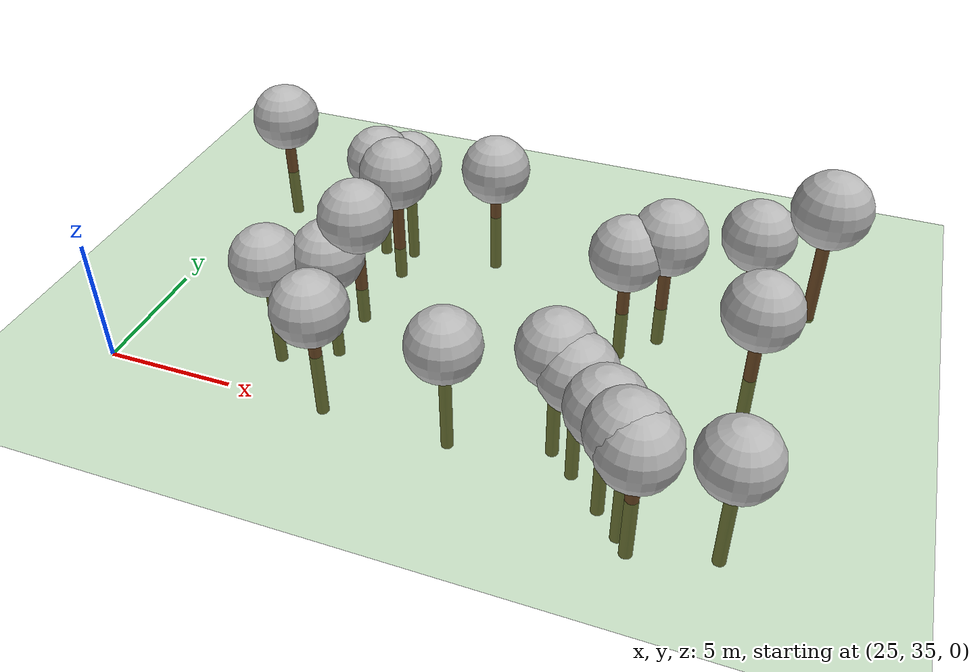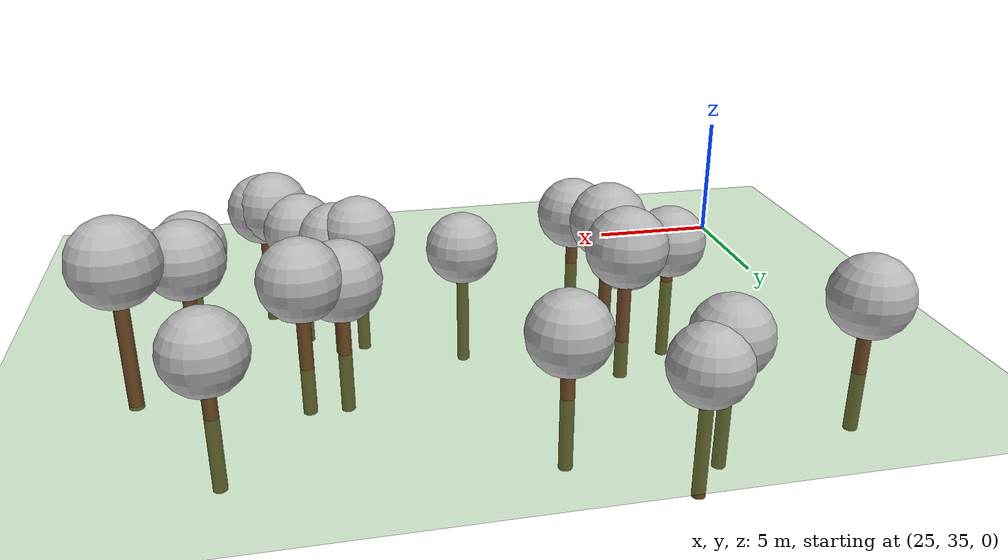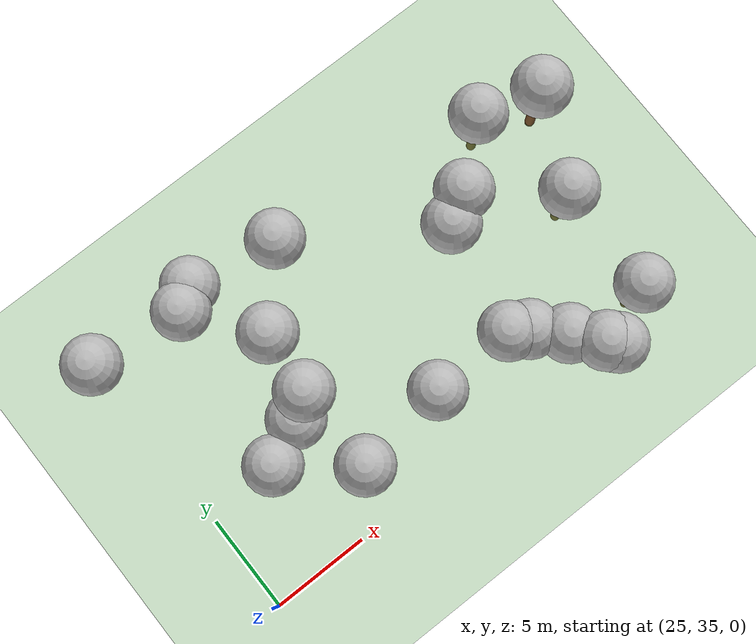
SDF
<sdf version="1.7">
 <world name="default">
  <model name="tree_simple475">
   <static>1</static>
   <link name="link">
    <pose>0 0 0.1 0 -0 0</pose>
    <collision name="collision_trunk">
     <pose>0 0 2 0 -0 0</pose>
     <geometry><cylinder><radius>0.25</radius><length>4</length></cylinder></geometry>
    </collision>
    <collision name="collision_treetop">
     <pose>0 0 5.2 0 -0 0</pose>
     <geometry><sphere><radius>1.5</radius></sphere></geometry>
    </collision>
    <visual name="trunk">
     <pose>0 0 2 0 -0 0</pose>
     <geometry><cylinder><radius>0.25</radius><length>4</length></cylinder></geometry>
     <material>
      <script>
       <uri>model://tree_simple/scripts</uri>
       <uri>model://tree_simple/materials/textures</uri>
       <name>TreeSimple/Trunk</name>
      </script>
     </material>
    </visual>
    <visual name="treetop">
     <pose>0 0 5.2 0 -0 0</pose>
     <geometry><sphere><radius>1.5</radius></sphere></geometry>
     <material>
      <script>
       <uri>model://tree_simple/scripts</uri>
       <uri>model://tree_simple/materials/textures</uri>
       <name>TreeSimple/Treetop</name>
      </script>
     </material>
    </visual>
   </link>
   <pose>30.9431 49.7431 -4.09418 0 -0 0</pose>
  </model>
  <model name="tree_simple449">
   <static>1</static>
   <link name="link">
    <pose>0 0 0.1 0 -0 0</pose>
    <collision name="collision_trunk">
     <pose>0 0 2 0 -0 0</pose>
     <geometry><cylinder><radius>0.25</radius><length>4</length></cylinder></geometry>
    </collision>
    <collision name="collision_treetop">
     <pose>0 0 5.2 0 -0 0</pose>
     <geometry><sphere><radius>1.5</radius></sphere></geometry>
    </collision>
    <visual name="trunk">
     <pose>0 0 2 0 -0 0</pose>
     <geometry><cylinder><radius>0.25</radius><length>4</length></cylinder></geometry>
     <material>
      <script>
       <uri>model://tree_simple/scripts</uri>
       <uri>model://tree_simple/materials/textures</uri>
       <name>TreeSimple/Trunk</name>
      </script>
     </material>
    </visual>
    <visual name="treetop">
     <pose>0 0 5.2 0 -0 0</pose>
     <geometry><sphere><radius>1.5</radius></sphere></geometry>
     <material>
      <script>
       <uri>model://tree_simple/scripts</uri>
       <uri>model://tree_simple/materials/textures</uri>
       <name>TreeSimple/Treetop</name>
      </script>
     </material>
    </visual>
   </link>
   <pose>32.2301 37.5842 -3.06763 0 -0 0</pose>
  </model>
  <model name="tree_simple435">
   <static>1</static>
   <link name="link">
    <pose>0 0 0.1 0 -0 0</pose>
    <collision name="collision_trunk">
     <pose>0 0 2 0 -0 0</pose>
     <geometry><cylinder><radius>0.25</radius><length>4</length></cylinder></geometry>
    </collision>
    <collision name="collision_treetop">
     <pose>0 0 5.2 0 -0 0</pose>
     <geometry><sphere><radius>1.5</radius></sphere></geometry>
    </collision>
    <visual name="trunk">
     <pose>0 0 2 0 -0 0</pose>
     <geometry><cylinder><radius>0.25</radius><length>4</length></cylinder></geometry>
     <material>
      <script>
       <uri>model://tree_simple/scripts</uri>
       <uri>model://tree_simple/materials/textures</uri>
       <name>TreeSimple/Trunk</name>
      </script>
     </material>
    </visual>
    <visual name="treetop">
     <pose>0 0 5.2 0 -0 0</pose>
     <geometry><sphere><radius>1.5</radius></sphere></geometry>
     <material>
      <script>
       <uri>model://tree_simple/scripts</uri>
       <uri>model://tree_simple/materials/textures</uri>
       <name>TreeSimple/Treetop</name>
      </script>
     </material>
    </visual>
   </link>
   <pose>25.0533 49.1626 -2.44093 0 -0 0</pose>
  </model>
  <model name="tree_simple426">
   <static>1</static>
   <link name="link">
    <pose>0 0 0.1 0 -0 0</pose>
    <collision name="collision_trunk">
     <pose>0 0 2 0 -0 0</pose>
     <geometry><cylinder><radius>0.25</radius><length>4</length></cylinder></geometry>
    </collision>
    <collision name="collision_treetop">
     <pose>0 0 5.2 0 -0 0</pose>
     <geometry><sphere><radius>1.5</radius></sphere></geometry>
    </collision>
    <visual name="trunk">
     <pose>0 0 2 0 -0 0</pose>
     <geometry><cylinder><radius>0.25</radius><length>4</length></cylinder></geometry>
     <material>
      <script>
       <uri>model://tree_simple/scripts</uri>
       <uri>model://tree_simple/materials/textures</uri>
       <name>TreeSimple/Trunk</name>
      </script>
     </material>
    </visual>
    <visual name="treetop">
     <pose>0 0 5.2 0 -0 0</pose>
     <geometry><sphere><radius>1.5</radius></sphere></geometry>
     <material>
      <script>
       <uri>model://tree_simple/scripts</uri>
       <uri>model://tree_simple/materials/textures</uri>
       <name>TreeSimple/Treetop</name>
      </script>
     </material>
    </visual>
   </link>
   <pose>48.2961 36.1952 -3.83175 0 -0 0</pose>
  </model>
  <model name="tree_simple414">
   <static>1</static>
   <link name="link">
    <pose>0 0 0.1 0 -0 0</pose>
    <collision name="collision_trunk">
     <pose>0 0 2 0 -0 0</pose>
     <geometry><cylinder><radius>0.25</radius><length>4</length></cylinder></geometry>
    </collision>
    <collision name="collision_treetop">
     <pose>0 0 5.2 0 -0 0</pose>
     <geometry><sphere><radius>1.5</radius></sphere></geometry>
    </collision>
    <visual name="trunk">
     <pose>0 0 2 0 -0 0</pose>
     <geometry><cylinder><radius>0.25</radius><length>4</length></cylinder></geometry>
     <material>
      <script>
       <uri>model://tree_simple/scripts</uri>
       <uri>model://tree_simple/materials/textures</uri>
       <name>TreeSimple/Trunk</name>
      </script>
     </material>
    </visual>
    <visual name="treetop">
     <pose>0 0 5.2 0 -0 0</pose>
     <geometry><sphere><radius>1.5</radius></sphere></geometry>
     <material>
      <script>
       <uri>model://tree_simple/scripts</uri>
       <uri>model://tree_simple/materials/textures</uri>
       <name>TreeSimple/Treetop</name>
      </script>
     </material>
    </visual>
   </link>
   <pose>44.7954 35.1223 -2.74625 0 -0 0</pose>
  </model>
  <model name="tree_simple388">
   <static>1</static>
   <link name="link">
    <pose>0 0 0.1 0 -0 0</pose>
    <collision name="collision_trunk">
     <pose>0 0 2 0 -0 0</pose>
     <geometry><cylinder><radius>0.25</radius><length>4</length></cylinder></geometry>
    </collision>
    <collision name="collision_treetop">
     <pose>0 0 5.2 0 -0 0</pose>
     <geometry><sphere><radius>1.5</radius></sphere></geometry>
    </collision>
    <visual name="trunk">
     <pose>0 0 2 0 -0 0</pose>
     <geometry><cylinder><radius>0.25</radius><length>4</length></cylinder></geometry>
     <material>
      <script>
       <uri>model://tree_simple/scripts</uri>
       <uri>model://tree_simple/materials/textures</uri>
       <name>TreeSimple/Trunk</name>
      </script>
     </material>
    </visual>
    <visual name="treetop">
     <pose>0 0 5.2 0 -0 0</pose>
     <geometry><sphere><radius>1.5</radius></sphere></geometry>
     <material>
      <script>
       <uri>model://tree_simple/scripts</uri>
       <uri>model://tree_simple/materials/textures</uri>
       <name>TreeSimple/Treetop</name>
      </script>
     </material>
    </visual>
   </link>
   <pose>42.4041 37.8396 -3.331 0 -0 0</pose>
  </model>
  <model name="tree_simple384">
   <static>1</static>
   <link name="link">
    <pose>0 0 0.1 0 -0 0</pose>
    <collision name="collision_trunk">
     <pose>0 0 2 0 -0 0</pose>
     <geometry><cylinder><radius>0.25</radius><length>4</length></cylinder></geometry>
    </collision>
    <collision name="collision_treetop">
     <pose>0 0 5.2 0 -0 0</pose>
     <geometry><sphere><radius>1.5</radius></sphere></geometry>
    </collision>
    <visual name="trunk">
     <pose>0 0 2 0 -0 0</pose>
     <geometry><cylinder><radius>0.25</radius><length>4</length></cylinder></geometry>
     <material>
      <script>
       <uri>model://tree_simple/scripts</uri>
       <uri>model://tree_simple/materials/textures</uri>
       <name>TreeSimple/Trunk</name>
      </script>
     </material>
    </visual>
    <visual name="treetop">
     <pose>0 0 5.2 0 -0 0</pose>
     <geometry><sphere><radius>1.5</radius></sphere></geometry>
     <material>
      <script>
       <uri>model://tree_simple/scripts</uri>
       <uri>model://tree_simple/materials/textures</uri>
       <name>TreeSimple/Treetop</name>
      </script>
     </material>
    </visual>
   </link>
   <pose>47.9653 41.8316 -2.13928 0 -0 0</pose>
  </model>
  <model name="tree_simple366">
   <static>1</static>
   <link name="link">
    <pose>0 0 0.1 0 -0 0</pose>
    <collision name="collision_trunk">
     <pose>0 0 2 0 -0 0</pose>
     <geometry><cylinder><radius>0.25</radius><length>4</length></cylinder></geometry>
    </collision>
    <collision name="collision_treetop">
     <pose>0 0 5.2 0 -0 0</pose>
     <geometry><sphere><radius>1.5</radius></sphere></geometry>
    </collision>
    <visual name="trunk">
     <pose>0 0 2 0 -0 0</pose>
     <geometry><cylinder><radius>0.25</radius><length>4</length></cylinder></geometry>
     <material>
      <script>
       <uri>model://tree_simple/scripts</uri>
       <uri>model://tree_simple/materials/textures</uri>
       <name>TreeSimple/Trunk</name>
      </script>
     </material>
    </visual>
    <visual name="treetop">
     <pose>0 0 5.2 0 -0 0</pose>
     <geometry><sphere><radius>1.5</radius></sphere></geometry>
     <material>
      <script>
       <uri>model://tree_simple/scripts</uri>
       <uri>model://tree_simple/materials/textures</uri>
       <name>TreeSimple/Treetop</name>
      </script>
     </material>
    </visual>
   </link>
   <pose>37.2116 38.3075 -3.97843 0 -0 0</pose>
  </model>
  <model name="tree_simple337">
   <static>1</static>
   <link name="link">
    <pose>0 0 0.1 0 -0 0</pose>
    <collision name="collision_trunk">
     <pose>0 0 2 0 -0 0</pose>
     <geometry><cylinder><radius>0.25</radius><length>4</length></cylinder></geometry>
    </collision>
    <collision name="collision_treetop">
     <pose>0 0 5.2 0 -0 0</pose>
     <geometry><sphere><radius>1.5</radius></sphere></geometry>
    </collision>
    <visual name="trunk">
     <pose>0 0 2 0 -0 0</pose>
     <geometry><cylinder><radius>0.25</radius><length>4</length></cylinder></geometry>
     <material>
      <script>
       <uri>model://tree_simple/scripts</uri>
       <uri>model://tree_simple/materials/textures</uri>
       <name>TreeSimple/Trunk</name>
      </script>
     </material>
    </visual>
    <visual name="treetop">
     <pose>0 0 5.2 0 -0 0</pose>
     <geometry><sphere><radius>1.5</radius></sphere></geometry>
     <material>
      <script>
       <uri>model://tree_simple/scripts</uri>
       <uri>model://tree_simple/materials/textures</uri>
       <name>TreeSimple/Treetop</name>
      </script>
     </material>
    </visual>
   </link>
   <pose>43.9549 44.8684 -1.95905 0 -0 0</pose>
  </model>
  <model name="tree_simple306">
   <static>1</static>
   <link name="link">
    <pose>0 0 0.1 0 -0 0</pose>
    <collision name="collision_trunk">
     <pose>0 0 2 0 -0 0</pose>
     <geometry><cylinder><radius>0.25</radius><length>4</length></cylinder></geometry>
    </collision>
    <collision name="collision_treetop">
     <pose>0 0 5.2 0 -0 0</pose>
     <geometry><sphere><radius>1.5</radius></sphere></geometry>
    </collision>
    <visual name="trunk">
     <pose>0 0 2 0 -0 0</pose>
     <geometry><cylinder><radius>0.25</radius><length>4</length></cylinder></geometry>
     <material>
      <script>
       <uri>model://tree_simple/scripts</uri>
       <uri>model://tree_simple/materials/textures</uri>
       <name>TreeSimple/Trunk</name>
      </script>
     </material>
    </visual>
    <visual name="treetop">
     <pose>0 0 5.2 0 -0 0</pose>
     <geometry><sphere><radius>1.5</radius></sphere></geometry>
     <material>
      <script>
       <uri>model://tree_simple/scripts</uri>
       <uri>model://tree_simple/materials/textures</uri>
       <name>TreeSimple/Treetop</name>
      </script>
     </material>
    </visual>
   </link>
   <pose>41.475 38.3641 -2.93764 0 -0 0</pose>
  </model>
  <model name="tree_simple197">
   <static>1</static>
   <link name="link">
    <pose>0 0 0.1 0 -0 0</pose>
    <collision name="collision_trunk">
     <pose>0 0 2 0 -0 0</pose>
     <geometry><cylinder><radius>0.25</radius><length>4</length></cylinder></geometry>
    </collision>
    <collision name="collision_treetop">
     <pose>0 0 5.2 0 -0 0</pose>
     <geometry><sphere><radius>1.5</radius></sphere></geometry>
    </collision>
    <visual name="trunk">
     <pose>0 0 2 0 -0 0</pose>
     <geometry><cylinder><radius>0.25</radius><length>4</length></cylinder></geometry>
     <material>
      <script>
       <uri>model://tree_simple/scripts</uri>
       <uri>model://tree_simple/materials/textures</uri>
       <name>TreeSimple/Trunk</name>
      </script>
     </material>
    </visual>
    <visual name="treetop">
     <pose>0 0 5.2 0 -0 0</pose>
     <geometry><sphere><radius>1.5</radius></sphere></geometry>
     <material>
      <script>
       <uri>model://tree_simple/scripts</uri>
       <uri>model://tree_simple/materials/textures</uri>
       <name>TreeSimple/Treetop</name>
      </script>
     </material>
    </visual>
   </link>
   <pose>45.226 34.713 -2.93057 0 -0 0</pose>
  </model>
  <model name="tree_simple180">
   <static>1</static>
   <link name="link">
    <pose>0 0 0.1 0 -0 0</pose>
    <collision name="collision_trunk">
     <pose>0 0 2 0 -0 0</pose>
     <geometry><cylinder><radius>0.25</radius><length>4</length></cylinder></geometry>
    </collision>
    <collision name="collision_treetop">
     <pose>0 0 5.2 0 -0 0</pose>
     <geometry><sphere><radius>1.5</radius></sphere></geometry>
    </collision>
    <visual name="trunk">
     <pose>0 0 2 0 -0 0</pose>
     <geometry><cylinder><radius>0.25</radius><length>4</length></cylinder></geometry>
     <material>
      <script>
       <uri>model://tree_simple/scripts</uri>
       <uri>model://tree_simple/materials/textures</uri>
       <name>TreeSimple/Trunk</name>
      </script>
     </material>
    </visual>
    <visual name="treetop">
     <pose>0 0 5.2 0 -0 0</pose>
     <geometry><sphere><radius>1.5</radius></sphere></geometry>
     <material>
      <script>
       <uri>model://tree_simple/scripts</uri>
       <uri>model://tree_simple/materials/textures</uri>
       <name>TreeSimple/Treetop</name>
      </script>
     </material>
    </visual>
   </link>
   <pose>31.0354 41.3621 -3.53472 0 -0 0</pose>
  </model>
  <model name="tree_simple164">
   <static>1</static>
   <link name="link">
    <pose>0 0 0.1 0 -0 0</pose>
    <collision name="collision_trunk">
     <pose>0 0 2 0 -0 0</pose>
     <geometry><cylinder><radius>0.25</radius><length>4</length></cylinder></geometry>
    </collision>
    <collision name="collision_treetop">
     <pose>0 0 5.2 0 -0 0</pose>
     <geometry><sphere><radius>1.5</radius></sphere></geometry>
    </collision>
    <visual name="trunk">
     <pose>0 0 2 0 -0 0</pose>
     <geometry><cylinder><radius>0.25</radius><length>4</length></cylinder></geometry>
     <material>
      <script>
       <uri>model://tree_simple/scripts</uri>
       <uri>model://tree_simple/materials/textures</uri>
       <name>TreeSimple/Trunk</name>
      </script>
     </material>
    </visual>
    <visual name="treetop">
     <pose>0 0 5.2 0 -0 0</pose>
     <geometry><sphere><radius>1.5</radius></sphere></geometry>
     <material>
      <script>
       <uri>model://tree_simple/scripts</uri>
       <uri>model://tree_simple/materials/textures</uri>
       <name>TreeSimple/Treetop</name>
      </script>
     </material>
    </visual>
   </link>
   <pose>32.4162 45.1361 -1.64448 0 -0 0</pose>
  </model>
  <model name="tree_simple159">
   <static>1</static>
   <link name="link">
    <pose>0 0 0.1 0 -0 0</pose>
    <collision name="collision_trunk">
     <pose>0 0 2 0 -0 0</pose>
     <geometry><cylinder><radius>0.25</radius><length>4</length></cylinder></geometry>
    </collision>
    <collision name="collision_treetop">
     <pose>0 0 5.2 0 -0 0</pose>
     <geometry><sphere><radius>1.5</radius></sphere></geometry>
    </collision>
    <visual name="trunk">
     <pose>0 0 2 0 -0 0</pose>
     <geometry><cylinder><radius>0.25</radius><length>4</length></cylinder></geometry>
     <material>
      <script>
       <uri>model://tree_simple/scripts</uri>
       <uri>model://tree_simple/materials/textures</uri>
       <name>TreeSimple/Trunk</name>
      </script>
     </material>
    </visual>
    <visual name="treetop">
     <pose>0 0 5.2 0 -0 0</pose>
     <geometry><sphere><radius>1.5</radius></sphere></geometry>
     <material>
      <script>
       <uri>model://tree_simple/scripts</uri>
       <uri>model://tree_simple/materials/textures</uri>
       <name>TreeSimple/Treetop</name>
      </script>
     </material>
    </visual>
   </link>
   <pose>28.838 40.3061 -3.6064 0 -0 0</pose>
  </model>
  <model name="tree_simple144">
   <static>1</static>
   <link name="link">
    <pose>0 0 0.1 0 -0 0</pose>
    <collision name="collision_trunk">
     <pose>0 0 2 0 -0 0</pose>
     <geometry><cylinder><radius>0.25</radius><length>4</length></cylinder></geometry>
    </collision>
    <collision name="collision_treetop">
     <pose>0 0 5.2 0 -0 0</pose>
     <geometry><sphere><radius>1.5</radius></sphere></geometry>
    </collision>
    <visual name="trunk">
     <pose>0 0 2 0 -0 0</pose>
     <geometry><cylinder><radius>0.25</radius><length>4</length></cylinder></geometry>
     <material>
      <script>
       <uri>model://tree_simple/scripts</uri>
       <uri>model://tree_simple/materials/textures</uri>
       <name>TreeSimple/Trunk</name>
      </script>
     </material>
    </visual>
    <visual name="treetop">
     <pose>0 0 5.2 0 -0 0</pose>
     <geometry><sphere><radius>1.5</radius></sphere></geometry>
     <material>
      <script>
       <uri>model://tree_simple/scripts</uri>
       <uri>model://tree_simple/materials/textures</uri>
       <name>TreeSimple/Treetop</name>
      </script>
     </material>
    </visual>
   </link>
   <pose>29.8741 48.8863 -3.56738 0 -0 0</pose>
  </model>
  <model name="tree_simple99">
   <static>1</static>
   <link name="link">
    <pose>0 0 0.1 0 -0 0</pose>
    <collision name="collision_trunk">
     <pose>0 0 2 0 -0 0</pose>
     <geometry><cylinder><radius>0.25</radius><length>4</length></cylinder></geometry>
    </collision>
    <collision name="collision_treetop">
     <pose>0 0 5.2 0 -0 0</pose>
     <geometry><sphere><radius>1.5</radius></sphere></geometry>
    </collision>
    <visual name="trunk">
     <pose>0 0 2 0 -0 0</pose>
     <geometry><cylinder><radius>0.25</radius><length>4</length></cylinder></geometry>
     <material>
      <script>
       <uri>model://tree_simple/scripts</uri>
       <uri>model://tree_simple/materials/textures</uri>
       <name>TreeSimple/Trunk</name>
      </script>
     </material>
    </visual>
    <visual name="treetop">
     <pose>0 0 5.2 0 -0 0</pose>
     <geometry><sphere><radius>1.5</radius></sphere></geometry>
     <material>
      <script>
       <uri>model://tree_simple/scripts</uri>
       <uri>model://tree_simple/materials/textures</uri>
       <name>TreeSimple/Treetop</name>
      </script>
     </material>
    </visual>
   </link>
   <pose>43.7647 36.5094 -3.30169 0 -0 0</pose>
  </model>
  <model name="tree_simple78">
   <static>1</static>
   <link name="link">
    <pose>0 0 0.1 0 -0 0</pose>
    <collision name="collision_trunk">
     <pose>0 0 2 0 -0 0</pose>
     <geometry><cylinder><radius>0.25</radius><length>4</length></cylinder></geometry>
    </collision>
    <collision name="collision_treetop">
     <pose>0 0 5.2 0 -0 0</pose>
     <geometry><sphere><radius>1.5</radius></sphere></geometry>
    </collision>
    <visual name="trunk">
     <pose>0 0 2 0 -0 0</pose>
     <geometry><cylinder><radius>0.25</radius><length>4</length></cylinder></geometry>
     <material>
      <script>
       <uri>model://tree_simple/scripts</uri>
       <uri>model://tree_simple/materials/textures</uri>
       <name>TreeSimple/Trunk</name>
      </script>
     </material>
    </visual>
    <visual name="treetop">
     <pose>0 0 5.2 0 -0 0</pose>
     <geometry><sphere><radius>1.5</radius></sphere></geometry>
     <material>
      <script>
       <uri>model://tree_simple/scripts</uri>
       <uri>model://tree_simple/materials/textures</uri>
       <name>TreeSimple/Treetop</name>
      </script>
     </material>
    </visual>
   </link>
   <pose>35.5259 48.7689 -2.92213 0 -0 0</pose>
  </model>
  <model name="tree_simple65">
   <static>1</static>
   <link name="link">
    <pose>0 0 0.1 0 -0 0</pose>
    <collision name="collision_trunk">
     <pose>0 0 2 0 -0 0</pose>
     <geometry><cylinder><radius>0.25</radius><length>4</length></cylinder></geometry>
    </collision>
    <collision name="collision_treetop">
     <pose>0 0 5.2 0 -0 0</pose>
     <geometry><sphere><radius>1.5</radius></sphere></geometry>
    </collision>
    <visual name="trunk">
     <pose>0 0 2 0 -0 0</pose>
     <geometry><cylinder><radius>0.25</radius><length>4</length></cylinder></geometry>
     <material>
      <script>
       <uri>model://tree_simple/scripts</uri>
       <uri>model://tree_simple/materials/textures</uri>
       <name>TreeSimple/Trunk</name>
      </script>
     </material>
    </visual>
    <visual name="treetop">
     <pose>0 0 5.2 0 -0 0</pose>
     <geometry><sphere><radius>1.5</radius></sphere></geometry>
     <material>
      <script>
       <uri>model://tree_simple/scripts</uri>
       <uri>model://tree_simple/materials/textures</uri>
       <name>TreeSimple/Treetop</name>
      </script>
     </material>
    </visual>
   </link>
   <pose>42.5613 44.0439 -2.48068 0 -0 0</pose>
  </model>
  <model name="tree_simple33">
   <static>1</static>
   <link name="link">
    <pose>0 0 0.1 0 -0 0</pose>
    <collision name="collision_trunk">
     <pose>0 0 2 0 -0 0</pose>
     <geometry><cylinder><radius>0.25</radius><length>4</length></cylinder></geometry>
    </collision>
    <collision name="collision_treetop">
     <pose>0 0 5.2 0 -0 0</pose>
     <geometry><sphere><radius>1.5</radius></sphere></geometry>
    </collision>
    <visual name="trunk">
     <pose>0 0 2 0 -0 0</pose>
     <geometry><cylinder><radius>0.25</radius><length>4</length></cylinder></geometry>
     <material>
      <script>
       <uri>model://tree_simple/scripts</uri>
       <uri>model://tree_simple/materials/textures</uri>
       <name>TreeSimple/Trunk</name>
      </script>
     </material>
    </visual>
    <visual name="treetop">
     <pose>0 0 5.2 0 -0 0</pose>
     <geometry><sphere><radius>1.5</radius></sphere></geometry>
     <material>
      <script>
       <uri>model://tree_simple/scripts</uri>
       <uri>model://tree_simple/materials/textures</uri>
       <name>TreeSimple/Treetop</name>
      </script>
     </material>
    </visual>
   </link>
   <pose>49.5679 46.201 -0.277907 0 -0 0</pose>
  </model>
  <model name="tree_simple24">
   <static>1</static>
   <link name="link">
    <pose>0 0 0.1 0 -0 0</pose>
    <collision name="collision_trunk">
     <pose>0 0 2 0 -0 0</pose>
     <geometry><cylinder><radius>0.25</radius><length>4</length></cylinder></geometry>
    </collision>
    <collision name="collision_treetop">
     <pose>0 0 5.2 0 -0 0</pose>
     <geometry><sphere><radius>1.5</radius></sphere></geometry>
    </collision>
    <visual name="trunk">
     <pose>0 0 2 0 -0 0</pose>
     <geometry><cylinder><radius>0.25</radius><length>4</length></cylinder></geometry>
     <material>
      <script>
       <uri>model://tree_simple/scripts</uri>
       <uri>model://tree_simple/materials/textures</uri>
       <name>TreeSimple/Trunk</name>
      </script>
     </material>
    </visual>
    <visual name="treetop">
     <pose>0 0 5.2 0 -0 0</pose>
     <geometry><sphere><radius>1.5</radius></sphere></geometry>
     <material>
      <script>
       <uri>model://tree_simple/scripts</uri>
       <uri>model://tree_simple/materials/textures</uri>
       <name>TreeSimple/Treetop</name>
      </script>
     </material>
    </visual>
   </link>
   <pose>32.091 41.9794 -1.82548 0 -0 0</pose>
  </model>
  <model name="tree_simple11">
   <static>1</static>
   <link name="link">
    <pose>0 0 0.1 0 -0 0</pose>
    <collision name="collision_trunk">
     <pose>0 0 2 0 -0 0</pose>
     <geometry><cylinder><radius>0.25</radius><length>4</length></cylinder></geometry>
    </collision>
    <collision name="collision_treetop">
     <pose>0 0 5.2 0 -0 0</pose>
     <geometry><sphere><radius>1.5</radius></sphere></geometry>
    </collision>
    <visual name="trunk">
     <pose>0 0 2 0 -0 0</pose>
     <geometry><cylinder><radius>0.25</radius><length>4</length></cylinder></geometry>
     <material>
      <script>
       <uri>model://tree_simple/scripts</uri>
       <uri>model://tree_simple/materials/textures</uri>
       <name>TreeSimple/Trunk</name>
      </script>
     </material>
    </visual>
    <visual name="treetop">
     <pose>0 0 5.2 0 -0 0</pose>
     <geometry><sphere><radius>1.5</radius></sphere></geometry>
     <material>
      <script>
       <uri>model://tree_simple/scripts</uri>
       <uri>model://tree_simple/materials/textures</uri>
       <name>TreeSimple/Treetop</name>
      </script>
     </material>
    </visual>
   </link>
   <pose>47.1205 47.589 -2.93939 0 -0 0</pose>
  </model>
  <model name="ground_plane">
   <static>1</static>
   <link name="link">
    <collision name="collision">
     <geometry><plane><normal>0 0 1</normal><size>250 250</size></plane></geometry>
     <surface><friction><ode><mu>1</mu><mu2>1</mu2></ode></friction></surface>
    </collision>
    <visual name="grass">
     <cast_shadows>0</cast_shadows>
     <geometry><plane><normal>0 0 1</normal><size>150 250</size></plane></geometry>
     <material>
      <script><uri>file://media/materials/scripts/Gazebo.material</uri><name>Gazebo/Grass</name></script>
     </material>
    </visual>
   </link>
  </model>
 </world>
</sdf>
